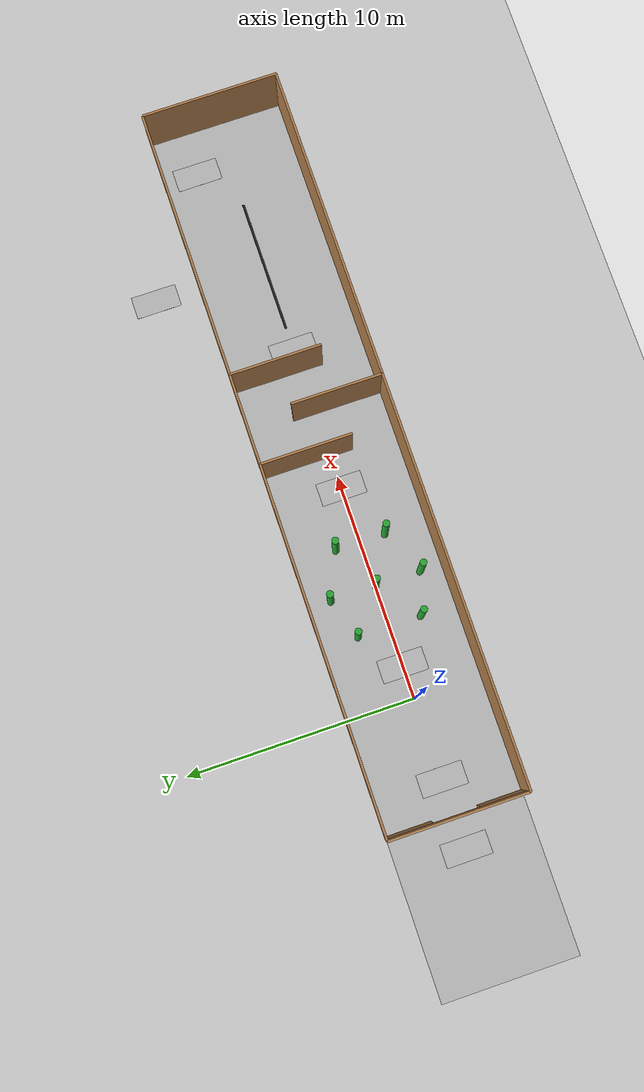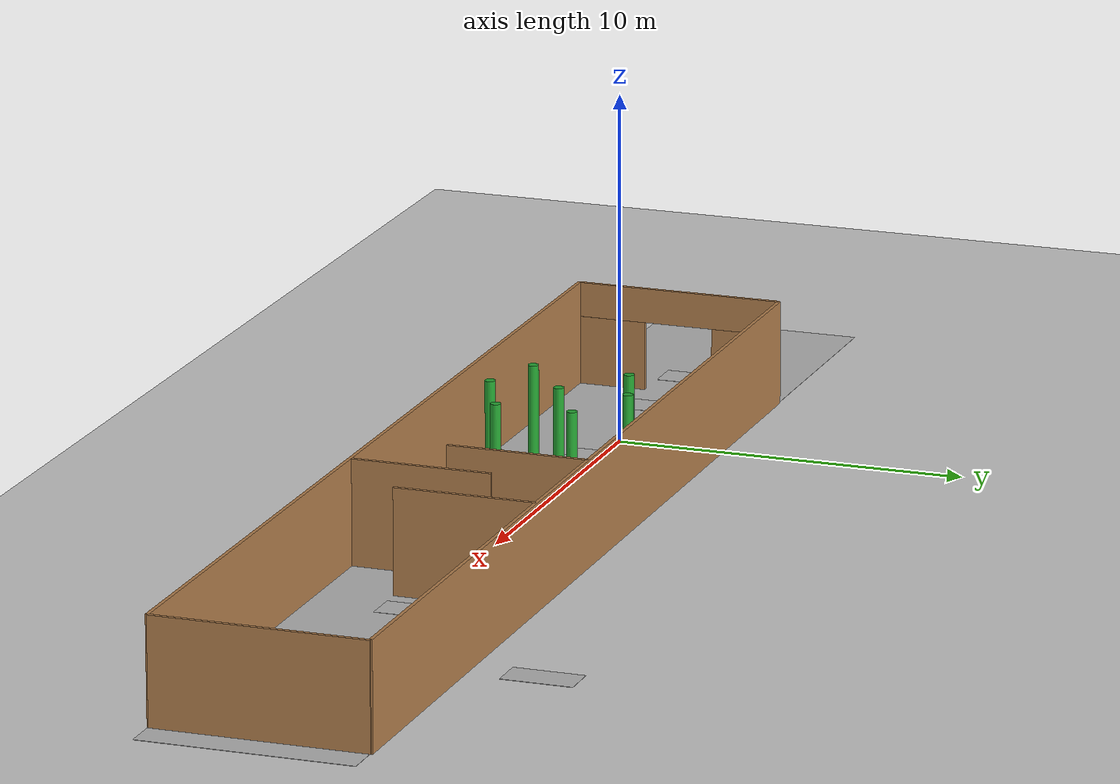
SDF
<sdf version="1.5">
 <world name="indoor_competition">
  <light type="directional" name="point_light">
   <pose>0.0 0 15 0 0 0</pose>
   <cast_shadows>false</cast_shadows>
  </light>
  <include><uri>model://ground_plane</uri></include>
  <model name="logo_ground">
   <pose>8 0 0.005 0 0 1.57</pose>
   <static>true</static>
   <link name="link">
    <visual name="visual">
     <cast_shadows>false</cast_shadows>
     <geometry><box><size>6 40 0.01</size></box></geometry>
     <material>
      <script>
       <uri>model://logo_ground/materials/scripts</uri>
       <uri>model://logo_ground/materials/textures</uri>
       <name>Cube/logo_ground</name>
      </script>
     </material>
    </visual>
   </link>
  </model>
  <model name="ground_marker">
   <static>true</static>
   <link name="takeoff_zone">
    <pose>-6.5 0 0.01 0 0 0</pose>
    <visual name="visual">
     <cast_shadows>false</cast_shadows>
     <geometry><box><size>1 2 0.01</size></box></geometry>
     <material>
      <script><uri>model://texture_amov/texture.material</uri><name>takeoff_zone</name></script>
     </material>
    </visual>
   </link>
   <link name="crossing_zone">
    <pose>-3.5 0 0.01 0 0 0</pose>
    <visual name="visual">
     <cast_shadows>false</cast_shadows>
     <geometry><box><size>1 2 0.01</size></box></geometry>
     <material>
      <script><uri>model://texture_amov/texture.material</uri><name>crossing_zone</name></script>
     </material>
    </visual>
   </link>
   <link name="pillar_zone">
    <pose>1.5 0 0.01 0 0 0</pose>
    <visual name="visual">
     <cast_shadows>false</cast_shadows>
     <geometry><box><size>1 2 0.01</size></box></geometry>
     <material><script><uri>model://texture_amov/texture.material</uri><name>pillar_zone</name></script></material>
    </visual>
   </link>
   <link name="corridor_zone">
    <pose>9.5 0 0.01 0 0 0</pose>
    <visual name="visual">
     <cast_shadows>false</cast_shadows>
     <geometry><box><size>1 2 0.01</size></box></geometry>
     <material>
      <script><uri>model://texture_amov/texture.material</uri><name>corridor_zone</name></script>
     </material>
    </visual>
   </link>
   <link name="num_zone">
    <pose>16 0 0.01 0 0 0</pose>
    <visual name="visual">
     <cast_shadows>false</cast_shadows>
     <geometry><box><size>1 2 0.01</size></box></geometry>
     <material><script><uri>model://texture_amov/texture.material</uri><name>num_zone</name></script></material>
    </visual>
   </link>
   <link name="color_zone">
    <pose>20 5 0.01 0 0 0</pose>
    <visual name="visual">
     <cast_shadows>false</cast_shadows>
     <geometry><box><size>1 2 0.01</size></box></geometry>
     <material><script><uri>model://texture_amov/texture.material</uri><name>color_zone</name></script></material>
    </visual>
   </link>
   <link name="landing_zone">
    <pose>25 1.5 0.01 0 0 0</pose>
    <visual name="visual">
     <cast_shadows>false</cast_shadows>
     <geometry><box><size>1 2 0.01</size></box></geometry>
     <material>
      <script><uri>model://texture_amov/texture.material</uri><name>landing_zone</name></script>
     </material>
    </visual>
   </link>
  </model>
  <model name="pillar_zone">
   <static>true</static>
   <link name="pillar_front_1">
    <pose>3.2 -1.4 1.5 0 -0 0</pose>
    <visual name="visual">
     <geometry><cylinder><radius>0.15</radius><length>3</length></cylinder></geometry>
     <material>
      <script><uri>file://media/materials/scripts/gazebo.material</uri><name>Gazebo/Green</name></script>
     </material>
    </visual>
    <collision name="collision">
     <geometry><cylinder><radius>0.25</radius><length>3</length></cylinder></geometry>
    </collision>
   </link>
   <link name="pillar_front_2">
    <pose>3.2 1.4 1.5 0 -0 0</pose>
    <visual name="visual">
     <geometry><cylinder><radius>0.15</radius><length>3</length></cylinder></geometry>
     <material>
      <script><uri>file://media/materials/scripts/gazebo.material</uri><name>Gazebo/Green</name></script>
     </material>
    </visual>
    <collision name="collision">
     <geometry><cylinder><radius>0.25</radius><length>3</length></cylinder></geometry>
    </collision>
   </link>
   <link name="pillar_mid_1">
    <pose>5.0 0.0 1.5 0 -0 0</pose>
    <visual name="visual">
     <geometry><cylinder><radius>0.15</radius><length>3</length></cylinder></geometry>
     <material>
      <script><uri>file://media/materials/scripts/gazebo.material</uri><name>Gazebo/Green</name></script>
     </material>
    </visual>
    <collision name="collision">
     <geometry><cylinder><radius>0.25</radius><length>3</length></cylinder></geometry>
    </collision>
   </link>
   <link name="pillar_mid_2">
    <pose>5.0 -2.0 1.5 0 -0 0</pose>
    <visual name="visual">
     <geometry><cylinder><radius>0.15</radius><length>3</length></cylinder></geometry>
     <material>
      <script><uri>file://media/materials/scripts/gazebo.material</uri><name>Gazebo/Green</name></script>
     </material>
    </visual>
    <collision name="collision">
     <geometry><cylinder><radius>0.25</radius><length>3</length></cylinder></geometry>
    </collision>
   </link>
   <link name="pillar_mid_3">
    <pose>5.0 2.0 1.5 0 -0 0</pose>
    <visual name="visual">
     <geometry><cylinder><radius>0.15</radius><length>3</length></cylinder></geometry>
     <material>
      <script><uri>file://media/materials/scripts/gazebo.material</uri><name>Gazebo/Green</name></script>
     </material>
    </visual>
    <collision name="collision">
     <geometry><cylinder><radius>0.25</radius><length>3</length></cylinder></geometry>
    </collision>
   </link>
   <link name="pillar_back_1">
    <pose>7.0 -1.1 1.5 0 -0 0</pose>
    <visual name="visual">
     <geometry><cylinder><radius>0.15</radius><length>3</length></cylinder></geometry>
     <material>
      <script><uri>file://media/materials/scripts/gazebo.material</uri><name>Gazebo/Green</name></script>
     </material>
    </visual>
    <collision name="collision">
     <geometry><cylinder><radius>0.25</radius><length>3</length></cylinder></geometry>
    </collision>
   </link>
   <link name="pillar_back_2">
    <pose>7.0 1.1 1.5 0 -0 0</pose>
    <visual name="visual">
     <geometry><cylinder><radius>0.15</radius><length>3</length></cylinder></geometry>
     <material>
      <script><uri>file://media/materials/scripts/gazebo.material</uri><name>Gazebo/Green</name></script>
     </material>
    </visual>
    <collision name="collision">
     <geometry><cylinder><radius>0.25</radius><length>3</length></cylinder></geometry>
    </collision>
   </link>
  </model>
  <model name="corridor_zone">
   <static>true</static>
   <link name="corridor_front">
    <pose>11 1.0 1.5 0 -0 1.57</pose>
    <inertial><mass>2.0</mass></inertial>
    <collision name="collision"><geometry><box><size>4 0.1 3</size></box></geometry></collision>
    <visual name="visual">
     <geometry><box><size>4 0.1 3</size></box></geometry>
     <material>
      <script><uri>file://media/materials/scripts/gazebo.material</uri><name>Gazebo/Wood</name></script>
      <ambient>1 1 1 1</ambient>
     </material>
    </visual>
   </link>
   <link name="corridor_mid">
    <pose>13 -1.0 1.5 0 -0 1.57</pose>
    <inertial><mass>2.0</mass></inertial>
    <collision name="collision"><geometry><box><size>4 0.1 3</size></box></geometry></collision>
    <visual name="visual">
     <geometry><box><size>4 0.1 3</size></box></geometry>
     <material>
      <script><uri>file://media/materials/scripts/gazebo.material</uri><name>Gazebo/Wood</name></script>
      <ambient>1 1 1 1</ambient>
     </material>
    </visual>
   </link>
   <link name="corridor_back">
    <pose>15 1.0 1.5 0 -0 1.57</pose>
    <inertial><mass>2.0</mass></inertial>
    <collision name="collision"><geometry><box><size>4 0.1 3</size></box></geometry></collision>
    <visual name="visual">
     <geometry><box><size>4 0.1 3</size></box></geometry>
     <material>
      <script><uri>file://media/materials/scripts/gazebo.material</uri><name>Gazebo/Wood</name></script>
      <ambient>1 1 1 1</ambient>
     </material>
    </visual>
   </link>
  </model>
  <model name="color_zone">
   <static>true</static>
   <link name="black_line">
    <pose>20 0 0.01 0 -0 0</pose>
    <visual name="visual">
     <geometry><box><size>6 0.1 0.01</size></box></geometry>
     <material>
      <script><uri>file://media/materials/scripts/gazebo.material</uri><name>Gazebo/Black</name></script>
     </material>
    </visual>
   </link>
  </model>
  <model name="wall_front">
   <static>true</static>
   <link name="wall_front_right">
    <pose>-5 -2 1 0 -0 1.57</pose>
    <inertial><mass>2.0</mass></inertial>
    <collision name="collision"><geometry><box><size>2 0.1 2</size></box></geometry></collision>
    <visual name="visual">
     <geometry><box><size>2 0.1 2</size></box></geometry>
     <material>
      <script><uri>file://media/materials/scripts/gazebo.material</uri><name>Gazebo/Wood</name></script>
      <ambient>1 1 1 1</ambient>
     </material>
    </visual>
   </link>
   <link name="wall_front_left">
    <pose>-5 2 1 0 -0 1.57</pose>
    <inertial><mass>2.0</mass></inertial>
    <collision name="collision"><geometry><box><size>2 0.1 2</size></box></geometry></collision>
    <visual name="visual">
     <geometry><box><size>2 0.1 2</size></box></geometry>
     <material>
      <script><uri>file://media/materials/scripts/gazebo.material</uri><name>Gazebo/Wood</name></script>
      <ambient>1 1 1 1</ambient>
     </material>
    </visual>
   </link>
   <link name="wall_front_up">
    <pose>-5 0 2.5 0 -0 1.57</pose>
    <inertial><mass>2.0</mass></inertial>
    <collision name="collision"><geometry><box><size>6 0.1 1</size></box></geometry></collision>
    <visual name="visual">
     <geometry><box><size>6 0.1 1</size></box></geometry>
     <material>
      <script><uri>file://media/materials/scripts/gazebo.material</uri><name>Gazebo/Wood</name></script>
      <ambient>1 1 1 1</ambient>
     </material>
    </visual>
   </link>
   <link name="logo_left">
    <pose>-5.05 2 1.5 0 1.57 0</pose>
    <visual name="visual">
     <cast_shadows>false</cast_shadows>
     <geometry><box><size>0.5 1.5 0.01</size></box></geometry>
     <material><script><uri>model://texture_amov/texture.material</uri><name>logo_color</name></script></material>
    </visual>
   </link>
   <link name="logo_right">
    <pose>-5.05 -2 1.5 0 1.57 0</pose>
    <visual name="visual">
     <cast_shadows>false</cast_shadows>
     <geometry><box><size>0.5 1.5 0.01</size></box></geometry>
     <material><script><uri>model://texture_amov/texture.material</uri><name>logo_color</name></script></material>
    </visual>
   </link>
  </model>
  <model name="wall_side">
   <static>true</static>
   <link name="wall_side_left">
    <pose>11 3 1.5 0 -0 0</pose>
    <inertial><mass>2.0</mass></inertial>
    <collision name="collision"><geometry><box><size>32 0.1 3</size></box></geometry></collision>
    <visual name="visual">
     <geometry><box><size>32 0.1 3</size></box></geometry>
     <material>
      <script><uri>file://media/materials/scripts/gazebo.material</uri><name>Gazebo/Wood</name></script>
      <ambient>1 1 1 1</ambient>
     </material>
    </visual>
   </link>
   <link name="wall_side_right">
    <pose>11 -3 1.5 0 -0 0</pose>
    <inertial><mass>2.0</mass></inertial>
    <collision name="collision"><geometry><box><size>32 0.1 3</size></box></geometry></collision>
    <visual name="visual">
     <geometry><box><size>32 0.1 3</size></box></geometry>
     <material>
      <script><uri>file://media/materials/scripts/gazebo.material</uri><name>Gazebo/Wood</name></script>
      <ambient>1 1 1 1</ambient>
     </material>
    </visual>
   </link>
   <link name="wall_side_back">
    <pose>27 -0 1.5 0 -0 1.57</pose>
    <inertial><mass>2.0</mass></inertial>
    <collision name="collision"><geometry><box><size>6 0.1 3</size></box></geometry></collision>
    <visual name="visual">
     <geometry><box><size>6 0.1 3</size></box></geometry>
     <material>
      <script><uri>file://media/materials/scripts/gazebo.material</uri><name>Gazebo/Wood</name></script>
      <ambient>1 1 1 1</ambient>
     </material>
    </visual>
   </link>
  </model>
  <physics name="default_physics" default="0" type="ode">
   <gravity>0 0 -9.8066</gravity>
   <ode>
    <solver>
     <type>quick</type>
     <iters>150</iters>
     <sor>1.3</sor>
     <use_dynamic_moi_rescaling>0</use_dynamic_moi_rescaling>
    </solver>
    <constraints>
     <cfm>0.00001</cfm>
     <erp>0.2</erp>
     <contact_max_correcting_vel>1000</contact_max_correcting_vel>
     <contact_surface_layer>0.01</contact_surface_layer>
    </constraints>
   </ode>
   <max_step_size>0.004</max_step_size>
   <real_time_factor>1000.0</real_time_factor>
   <real_time_update_rate>250</real_time_update_rate>
   <magnetic_field>6.0e-6 2.3e-5 -4.2e-5</magnetic_field>
  </physics>
 </world>
</sdf>
